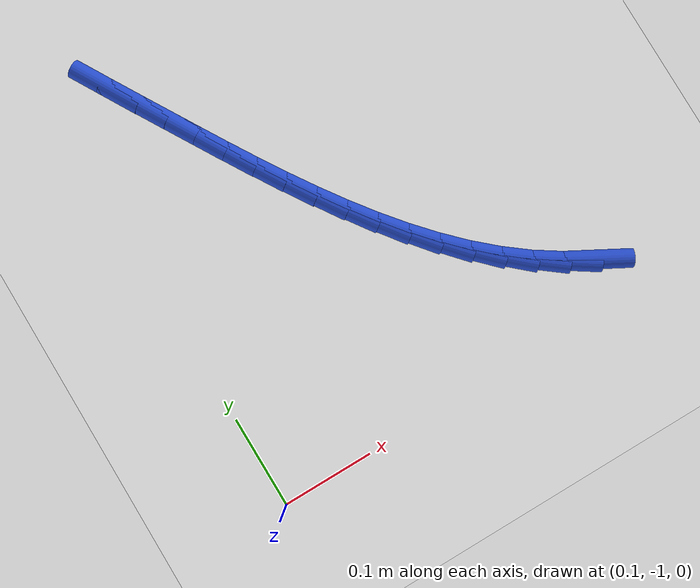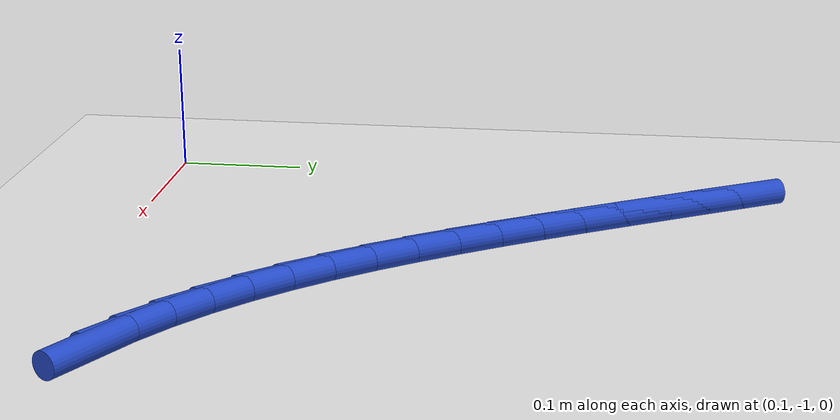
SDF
<sdf version="1.6">
 <world name="default">
  <model name="ground_plane">
   <static>1</static>
   <link name="link">
    <collision name="collision">
     <geometry><plane><normal>0 0 1</normal><size>100 100</size></plane></geometry>
     <surface><friction><ode><mu>100</mu><mu2>50</mu2></ode></friction></surface>
    </collision>
    <visual name="visual">
     <cast_shadows>0</cast_shadows>
     <geometry><plane><normal>0 0 1</normal><size>100 100</size></plane></geometry>
     <material>
      <script><uri>file://media/materials/scripts/gazebo.material</uri><name>Gazebo/WhiteGlow</name></script>
     </material>
    </visual>
   </link>
  </model>
  <model name="line">
   <link name="link_167">
    <pose>0.49903423160975247 -0.9484492358229555 0.01 0 1.57 -0.5002947511557158</pose>
    <collision name="collision">
     <geometry><cylinder><radius>0.01</radius><length>0.08</length></cylinder></geometry>
    </collision>
    <visual name="visual">
     <material>
      <script><name>Gazebo/Blue</name><uri>file://media/materials/scripts/gazebo.material</uri></script>
     </material>
     <geometry><cylinder><radius>0.01</radius><length>0.08</length></cylinder></geometry>
    </visual>
   </link>
   <link name="link_168">
    <pose>0.4708171334790444 -0.933023363910735 0.01 0 1.57 -0.5839864177489447</pose>
    <collision name="collision">
     <geometry><cylinder><radius>0.01</radius><length>0.08</length></cylinder></geometry>
    </collision>
    <visual name="visual">
     <material>
      <script><name>Gazebo/Blue</name><uri>file://media/materials/scripts/gazebo.material</uri></script>
     </material>
     <geometry><cylinder><radius>0.01</radius><length>0.08</length></cylinder></geometry>
    </visual>
   </link>
   <link name="link_169">
    <pose>0.4439724567187392 -0.9152822279141314 0.01 0 1.57 -0.6603627679289149</pose>
    <collision name="collision">
     <geometry><cylinder><radius>0.01</radius><length>0.08</length></cylinder></geometry>
    </collision>
    <visual name="visual">
     <material>
      <script><name>Gazebo/Blue</name><uri>file://media/materials/scripts/gazebo.material</uri></script>
     </material>
     <geometry><cylinder><radius>0.01</radius><length>0.08</length></cylinder></geometry>
    </visual>
   </link>
   <link name="link_170">
    <pose>0.41840726494645314 -0.8954260923345572 0.01 0 1.57 -0.7289503137296697</pose>
    <collision name="collision">
     <geometry><cylinder><radius>0.01</radius><length>0.08</length></cylinder></geometry>
    </collision>
    <visual name="visual">
     <material>
      <script><name>Gazebo/Blue</name><uri>file://media/materials/scripts/gazebo.material</uri></script>
     </material>
     <geometry><cylinder><radius>0.01</radius><length>0.08</length></cylinder></geometry>
    </visual>
   </link>
   <link name="link_171">
    <pose>0.39402860998886224 -0.8736552477833881 0.01 0 1.57 -0.7896785560271843</pose>
    <collision name="collision">
     <geometry><cylinder><radius>0.01</radius><length>0.08</length></cylinder></geometry>
    </collision>
    <visual name="visual">
     <material>
      <script><name>Gazebo/Blue</name><uri>file://media/materials/scripts/gazebo.material</uri></script>
     </material>
     <geometry><cylinder><radius>0.01</radius><length>0.08</length></cylinder></geometry>
    </visual>
   </link>
   <link name="link_172">
    <pose>0.37074354367264256 -0.8501699848719994 0.01 0 1.57 -0.8427536660031123</pose>
    <collision name="collision">
     <geometry><cylinder><radius>0.01</radius><length>0.08</length></cylinder></geometry>
    </collision>
    <visual name="visual">
     <material>
      <script><name>Gazebo/Blue</name><uri>file://media/materials/scripts/gazebo.material</uri></script>
     </material>
     <geometry><cylinder><radius>0.01</radius><length>0.08</length></cylinder></geometry>
    </visual>
   </link>
   <link name="link_173">
    <pose>0.34845911782447 -0.8251705942117662 0.01 0 1.57 -0.8885430484030941</pose>
    <collision name="collision">
     <geometry><cylinder><radius>0.01</radius><length>0.08</length></cylinder></geometry>
    </collision>
    <visual name="visual">
     <material>
      <script><name>Gazebo/Blue</name><uri>file://media/materials/scripts/gazebo.material</uri></script>
     </material>
     <geometry><cylinder><radius>0.01</radius><length>0.08</length></cylinder></geometry>
    </visual>
   </link>
   <link name="link_174">
    <pose>0.32708238427102043 -0.7988573664140646 0.01 0 1.57 -0.9274840543625754</pose>
    <collision name="collision">
     <geometry><cylinder><radius>0.01</radius><length>0.08</length></cylinder></geometry>
    </collision>
    <visual name="visual">
     <material>
      <script><name>Gazebo/Blue</name><uri>file://media/materials/scripts/gazebo.material</uri></script>
     </material>
     <geometry><cylinder><radius>0.01</radius><length>0.08</length></cylinder></geometry>
    </visual>
   </link>
   <link name="link_175">
    <pose>0.30652039483897 -0.7714305920902689 0.01 0 1.57 -0.9600189200335406</pose>
    <collision name="collision">
     <geometry><cylinder><radius>0.01</radius><length>0.08</length></cylinder></geometry>
    </collision>
    <visual name="visual">
     <material>
      <script><name>Gazebo/Blue</name><uri>file://media/materials/scripts/gazebo.material</uri></script>
     </material>
     <geometry><cylinder><radius>0.01</radius><length>0.08</length></cylinder></geometry>
    </visual>
   </link>
   <link name="link_176">
    <pose>0.2866802013549945 -0.743090561851755 0.01 0 1.57 -0.9865518489668331</pose>
    <collision name="collision">
     <geometry><cylinder><radius>0.01</radius><length>0.08</length></cylinder></geometry>
    </collision>
    <visual name="visual">
     <material>
      <script><name>Gazebo/Blue</name><uri>file://media/materials/scripts/gazebo.material</uri></script>
     </material>
     <geometry><cylinder><radius>0.01</radius><length>0.08</length></cylinder></geometry>
    </visual>
   </link>
   <link name="link_177">
    <pose>0.2674688556457701 -0.7140375663098986 0.01 0 1.57 -1.0074222513897204</pose>
    <collision name="collision">
     <geometry><cylinder><radius>0.01</radius><length>0.08</length></cylinder></geometry>
    </collision>
    <visual name="visual">
     <material>
      <script><name>Gazebo/Blue</name><uri>file://media/materials/scripts/gazebo.material</uri></script>
     </material>
     <geometry><cylinder><radius>0.01</radius><length>0.08</length></cylinder></geometry>
    </visual>
   </link>
   <link name="link_178">
    <pose>0.24879340953797263 -0.6844718960760742 0.01 0 1.57 -1.02288846994151</pose>
    <collision name="collision">
     <geometry><cylinder><radius>0.01</radius><length>0.08</length></cylinder></geometry>
    </collision>
    <visual name="visual">
     <material>
      <script><name>Gazebo/Blue</name><uri>file://media/materials/scripts/gazebo.material</uri></script>
     </material>
     <geometry><cylinder><radius>0.01</radius><length>0.08</length></cylinder></geometry>
    </visual>
   </link>
   <link name="link_179">
    <pose>0.2305609148582782 -0.6545938417616579 0.01 0 1.57 -1.0331174440403632</pose>
    <collision name="collision">
     <geometry><cylinder><radius>0.01</radius><length>0.08</length></cylinder></geometry>
    </collision>
    <visual name="visual">
     <material>
      <script><name>Gazebo/Blue</name><uri>file://media/materials/scripts/gazebo.material</uri></script>
     </material>
     <geometry><cylinder><radius>0.01</radius><length>0.08</length></cylinder></geometry>
    </visual>
   </link>
   <link name="link_180">
    <pose>0.2126784234333627 -0.6246036939780246 0.01 0 1.57 -1.0381769594633734</pose>
    <collision name="collision">
     <geometry><cylinder><radius>0.01</radius><length>0.08</length></cylinder></geometry>
    </collision>
    <visual name="visual">
     <material>
      <script><name>Gazebo/Blue</name><uri>file://media/materials/scripts/gazebo.material</uri></script>
     </material>
     <geometry><cylinder><radius>0.01</radius><length>0.08</length></cylinder></geometry>
    </visual>
   </link>
   <link name="link_181">
    <pose>0.19505298708990212 -0.5947017433365501 0.01 0 1.57 -1.0387619165496536</pose>
    <collision name="collision">
     <geometry><cylinder><radius>0.01</radius><length>0.08</length></cylinder></geometry>
    </collision>
    <visual name="visual">
     <material>
      <script><name>Gazebo/Blue</name><uri>file://media/materials/scripts/gazebo.material</uri></script>
     </material>
     <geometry><cylinder><radius>0.01</radius><length>0.08</length></cylinder></geometry>
    </visual>
   </link>
   <link name="link_182">
    <pose>0.17760732611005148 -0.5650651695647892 0.01 0 1.57 -1.0408463681204154</pose>
    <collision name="collision">
     <geometry><cylinder><radius>0.01</radius><length>0.08</length></cylinder></geometry>
    </collision>
    <visual name="visual">
     <material>
      <script><name>Gazebo/Blue</name><uri>file://media/materials/scripts/gazebo.material</uri></script>
     </material>
     <geometry><cylinder><radius>0.01</radius><length>0.08</length></cylinder></geometry>
    </visual>
   </link>
   <link name="link_183">
    <pose>0.16039283045363084 -0.5356813653384959 0.01 0 1.57 -1.0474804078777582</pose>
    <collision name="collision">
     <geometry><cylinder><radius>0.01</radius><length>0.08</length></cylinder></geometry>
    </collision>
    <visual name="visual">
     <material>
      <script><name>Gazebo/Blue</name><uri>file://media/materials/scripts/gazebo.material</uri></script>
     </material>
     <geometry><cylinder><radius>0.01</radius><length>0.08</length></cylinder></geometry>
    </visual>
   </link>
  </model>
 </world>
</sdf>
